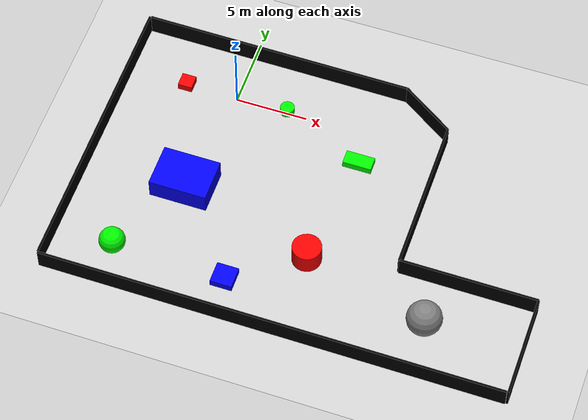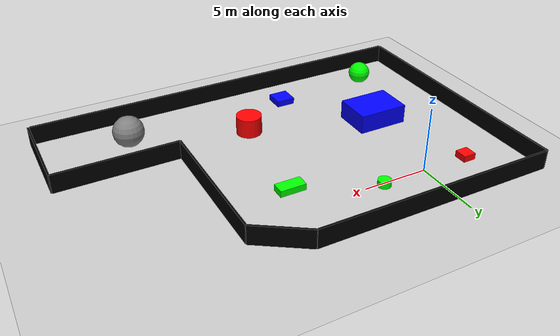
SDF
<?xml version='1.0' encoding='utf-8'?>
<sdf version="1.9">
  <world name="test_world">
    <physics name="1ms" type="dart">
      <max_step_size>0.001</max_step_size>
      <real_time_factor>1</real_time_factor>
      <real_time_update_rate>1000</real_time_update_rate>
    </physics>
    <plugin name="gz::sim::systems::Physics" filename="gz-sim-physics-system" />
    <plugin name="gz::sim::systems::UserCommands" filename="gz-sim-user-commands-system" />
    <plugin name="gz::sim::systems::SceneBroadcaster" filename="gz-sim-scene-broadcaster-system" />
    <plugin name="gz::sim::systems::Contact" filename="gz-sim-contact-system" />
    <plugin name="gz::sim::systems::Sensors" filename="gz-sim-sensors-system">
      <render_engine>ogre2</render_engine>
    </plugin>
    <gravity>0 0 -9.8</gravity>
    <magnetic_field>6e-06 2.3e-05 -4.2e-05</magnetic_field>
    <atmosphere type="adiabatic" />
    <scene>
      <ambient>0.4 0.4 0.4 1</ambient>
      <background>0.7 0.7 0.7 1</background>
      <shadows>true</shadows>
    </scene>
    <model name="ground_plane">
      <static>true</static>
      <link name="link">
        <collision name="collision">
          <geometry>
            <plane>
              <normal>0 0 1</normal>
              <size>100 100</size>
            </plane>
          </geometry>
          <surface>
            <friction>
              <ode />
            </friction>
            <bounce />
            <contact />
          </surface>
        </collision>
        <visual name="visual">
          <geometry>
            <plane>
              <normal>0 0 1</normal>
              <size>100 100</size>
            </plane>
          </geometry>
          <material>
            <ambient>0.8 0.8 0.8 1</ambient>
            <diffuse>0.8 0.8 0.8 1</diffuse>
            <specular>0.8 0.8 0.8 1</specular>
          </material>
        </visual>
        <pose>0 0 0 0 -0 0</pose>
        <inertial>
          <pose>0 0 0 0 -0 0</pose>
          <mass>1</mass>
          <inertia>
            <ixx>1</ixx>
            <ixy>0</ixy>
            <ixz>0</ixz>
            <iyy>1</iyy>
            <iyz>0</iyz>
            <izz>1</izz>
          </inertia>
        </inertial>
        <enable_wind>false</enable_wind>
      </link>
      <pose>0 0 0 0 -0 0</pose>
      <self_collide>false</self_collide>
    </model>
    <light name="sun" type="directional">
      <pose>0 0 10 0 -0 0</pose>
      <cast_shadows>true</cast_shadows>
      <intensity>1</intensity>
      <direction>-0.5 0.1 -0.9</direction>
      <diffuse>0.8 0.8 0.8 1</diffuse>
      <specular>0.2 0.2 0.2 1</specular>
      <attenuation>
        <range>1000</range>
        <linear>0.01</linear>
        <constant>0.90000000000000002</constant>
        <quadratic>0.001</quadratic>
      </attenuation>
      <spot>
        <inner_angle>0</inner_angle>
        <outer_angle>0</outer_angle>
        <falloff>0</falloff>
      </spot>
    </light>
  <model name="wall_1">
            <static>true</static>
            <type>wall</type>
            <pose>-7.800000 -6.450000 0.750000 0 0 -1.570796</pose>
            <link name="link">
                <collision name="collision">
                    <geometry><box><size>20.500000 0.150000 1.500000</size></box></geometry>
                </collision>
                <visual name="visual">
                    <geometry><box><size>20.500000 0.150000 1.500000</size></box></geometry>
                    <material>
                        <diffuse>0 0 0 1</diffuse>
                    </material>
                </visual></link></model><model name="wall_2">
            <static>true</static>
            <type>wall</type>
            <pose>8.100000 -16.800000 0.750000 0 0 0.000000</pose>
            <link name="link">
                <collision name="collision">
                    <geometry><box><size>31.800000 0.150000 1.500000</size></box></geometry>
                </collision>
                <visual name="visual">
                    <geometry><box><size>31.800000 0.150000 1.500000</size></box></geometry>
                    <material>
                        <diffuse>0 0 0 1</diffuse>
                    </material>
                </visual></link></model><model name="wall_3">
            <static>true</static>
            <type>wall</type>
            <pose>24.100000 -13.250000 0.750000 0 0 1.570796</pose>
            <link name="link">
                <collision name="collision">
                    <geometry><box><size>7.100000 0.150000 1.500000</size></box></geometry>
                </collision>
                <visual name="visual">
                    <geometry><box><size>7.100000 0.150000 1.500000</size></box></geometry>
                    <material>
                        <diffuse>0 0 0 1</diffuse>
                    </material>
                </visual></link></model><model name="wall_4">
            <static>true</static>
            <type>wall</type>
            <pose>19.400000 -9.700000 0.750000 0 0 3.141593</pose>
            <link name="link">
                <collision name="collision">
                    <geometry><box><size>9.400000 0.150000 1.500000</size></box></geometry>
                </collision>
                <visual name="visual">
                    <geometry><box><size>9.400000 0.150000 1.500000</size></box></geometry>
                    <material>
                        <diffuse>0 0 0 1</diffuse>
                    </material>
                </visual></link></model><model name="wall_5">
            <static>true</static>
            <type>wall</type>
            <pose>14.700000 -4.200000 0.750000 0 0 1.570796</pose>
            <link name="link">
                <collision name="collision">
                    <geometry><box><size>11.000000 0.150000 1.500000</size></box></geometry>
                </collision>
                <visual name="visual">
                    <geometry><box><size>11.000000 0.150000 1.500000</size></box></geometry>
                    <material>
                        <diffuse>0 0 0 1</diffuse>
                    </material>
                </visual></link></model><model name="wall_6">
            <static>true</static>
            <type>wall</type>
            <pose>12.900000 2.500000 0.750000 0 0 2.553590</pose>
            <link name="link">
                <collision name="collision">
                    <geometry><box><size>4.326662 0.150000 1.500000</size></box></geometry>
                </collision>
                <visual name="visual">
                    <geometry><box><size>4.326662 0.150000 1.500000</size></box></geometry>
                    <material>
                        <diffuse>0 0 0 1</diffuse>
                    </material>
                </visual></link></model><model name="wall_7">
            <static>true</static>
            <type>wall</type>
            <pose>1.700000 3.750000 0.750000 0 0 -0.005319</pose>
            <link name="link">
                <collision name="collision">
                    <geometry><box><size>18.800266 0.150000 1.500000</size></box></geometry>
                </collision>
                <visual name="visual">
                    <geometry><box><size>18.800266 0.150000 1.500000</size></box></geometry>
                    <material>
                        <diffuse>0 0 0 1</diffuse>
                    </material>
                </visual></link></model><model name="box_2">
            <static>true</static>
            <type>box</type>
            <pose>9.600000 -2.400000 0.250000 0 0 0</pose>
            <link name="link">
                <collision name="collision">
                    <geometry><box><size>2.000000 1.000000 0.500000</size></box></geometry>
                </collision>
                <visual name="visual">
                    <geometry><box><size>2.000000 1.000000 0.500000</size></box></geometry>
                    <material>
                        <diffuse>0 1 0 1</diffuse>
                    </material>
                </visual></link></model><model name="box_3">
            <static>true</static>
            <type>box</type>
            <pose>-0.900000 -7.800000 0.750000 0 0 0</pose>
            <link name="link">
                <collision name="collision">
                    <geometry><box><size>4.000000 3.000000 1.500000</size></box></geometry>
                </collision>
                <visual name="visual">
                    <geometry><box><size>4.000000 3.000000 1.500000</size></box></geometry>
                    <material>
                        <diffuse>0 0 1 1</diffuse>
                    </material>
                </visual></link></model><model name="cylinder_2">
            <static>true</static>
            <type>cylinder</type>
            <pose>3.600000 0.200000 0.250000 0 0 0</pose>
            <link name="link">
                <collision name="collision">
                    <geometry><cylinder><radius>0.500000</radius><length>0.500000</length></cylinder></geometry>
                </collision>
                <visual name="visual">
                    <geometry><cylinder><radius>0.500000</radius><length>0.500000</length></cylinder></geometry>
                    <material>
                        <diffuse>0 1 0 1</diffuse>
                    </material>
                </visual></link></model><model name="sphere_2">
            <static>true</static>
            <type>sphere</type>
            <pose>-3.700000 -14.000000 0.900000 0 0 0</pose>
            <link name="link">
                <collision name="collision">
                    <geometry><sphere><radius>0.900000</radius></sphere></geometry>
                </collision>
                <visual name="visual">
                    <geometry><sphere><radius>0.900000</radius></sphere></geometry>
                    <material>
                        <diffuse>0 1 0 1</diffuse>
                    </material>
                </visual></link></model><model name="box_4">
            <static>true</static>
            <type>box</type>
            <pose>4.100000 -13.900000 0.250000 0 0 0</pose>
            <link name="link">
                <collision name="collision">
                    <geometry><box><size>1.500000 1.500000 0.500000</size></box></geometry>
                </collision>
                <visual name="visual">
                    <geometry><box><size>1.500000 1.500000 0.500000</size></box></geometry>
                    <material>
                        <diffuse>0 0 1 1</diffuse>
                    </material>
                </visual></link></model><model name="box_1">
            <static>false</static>
            <type>box</type>
            <pose>-3.700000 0.100000 0.250000 0 0 0</pose>
            <link name="link">
                <collision name="collision">
                    <geometry><box><size>1.000000 1.000000 0.500000</size></box></geometry>
                </collision>
                <visual name="visual">
                    <geometry><box><size>1.000000 1.000000 0.500000</size></box></geometry>
                    <material>
                        <diffuse>1 0 0 1</diffuse>
                    </material>
                </visual><inertial>
                <mass>500.000000</mass>
                <inertia>
                    <ixx>52.083333</ixx><ixy>0</ixy><ixz>0</ixz>
                    <iyy>52.083333</iyy><iyz>0</iyz>
                    <izz>83.333333</izz>
                </inertia>
            </inertial><gravity>false</gravity></link><motion><type>polygon</type><velocity>3.000000</velocity><std>0.100000</std><point><x>-5.500000</x><y>0.500000</y></point><point><x>-3.900000</x><y>2.300000</y></point><point><x>-1.900000</x><y>1.000000</y></point><point><x>-1.600000</x><y>-1.100000</y></point><point><x>-3.200000</x><y>-0.900000</y></point><point><x>-4.700000</x><y>-1.400000</y></point><point><x>-6.400000</x><y>-0.600000</y></point></motion></model><model name="cylinder_1">
            <static>false</static>
            <type>cylinder</type>
            <pose>8.700000 -10.700000 0.750000 0 0 0</pose>
            <link name="link">
                <collision name="collision">
                    <geometry><cylinder><radius>1.000000</radius><length>1.500000</length></cylinder></geometry>
                </collision>
                <visual name="visual">
                    <geometry><cylinder><radius>1.000000</radius><length>1.500000</length></cylinder></geometry>
                    <material>
                        <diffuse>1 0 0 1</diffuse>
                    </material>
                </visual><inertial>
                <mass>4712.388980</mass>
                <inertia>
                    <ixx>2061.670179</ixx><ixy>0</ixy><ixz>0</ixz>
                    <iyy>2061.670179</iyy><iyz>0</iyz>
                    <izz>2356.194490</izz>
                </inertia>
            </inertial><gravity>false</gravity></link><motion><type>elliptical</type><velocity>2.000000</velocity><std>0.100000</std><semi_major>2.000000</semi_major><semi_minor>0.500000</semi_minor><angle>0.785398</angle></motion></model><model name="sphere_1">
            <static>false</static>
            <type>sphere</type>
            <pose>17.500000 -13.200000 1.200000 0 0 0</pose>
            <link name="link">
                <collision name="collision">
                    <geometry><sphere><radius>1.200000</radius></sphere></geometry>
                </collision>
                <visual name="visual">
                    <geometry><sphere><radius>1.200000</radius></sphere></geometry>
                    <material>
                        <diffuse>0.5 0.5 0.5 1</diffuse>
                    </material>
                </visual><inertial>
                <mass>7238.229474</mass>
                <inertia>
                    <ixx>4169.220177</ixx><ixy>0</ixy><ixz>0</ixz>
                    <iyy>4169.220177</iyy><iyz>0</iyz>
                    <izz>4169.220177</izz>
                </inertia>
            </inertial><gravity>false</gravity></link><motion><type>linear</type><velocity>4.000000</velocity><std>0.100000</std><point><x>20.900000</x><y>-13.200000</y></point><point><x>13.900000</x><y>-13.400000</y></point></motion></model></world>
</sdf>
